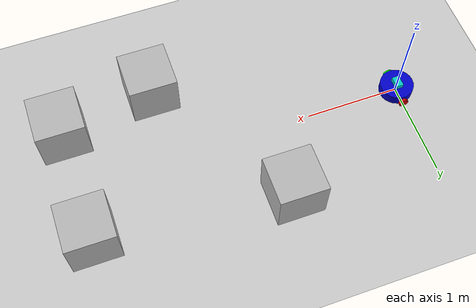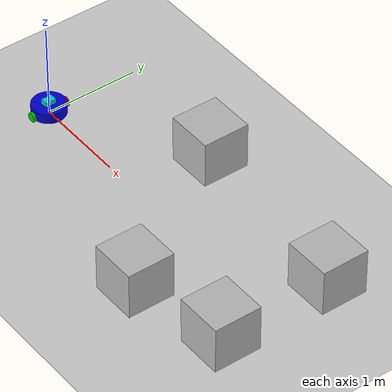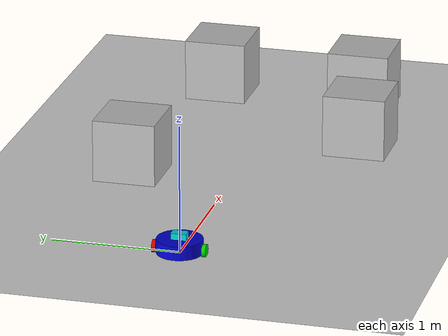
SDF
<?xml version="1.0" ?>
<sdf version="1.8">
	<world name="car_world">
		<physics name="1ms" type="gz-physics">
			<max_step_size>0.001</max_step_size>
			<real_time_factor>1.0</real_time_factor>
		</physics>
		<plugin filename="libgz-sim-sensors-system.so"
				name="gz::sim::systems::Sensors">
			<render_engine>ogre2</render_engine>
		</plugin>

		<!-- Add Plugins -->
		<plugin
		filename="gz-sim-physics-system"
		name="gz::sim::systems::Physics">
		</plugin>

		<plugin
		filename="gz-sim-scene-broadcaster-system"
		name="gz::sim::systems::SceneBroadcaster">
		</plugin>

		<light type="directional" name="sun">
			<cast_shadows>true</cast_shadows>
			<pose>0 0 10 0 0 0</pose>
			<diffuse>0.8 0.8 0.8 1</diffuse>
			<specular>0.2 0.2 0.2 1</specular>
			<attenuation>
				<range>1000</range>
				<constant>0.9</constant>
				<linear>0.01</linear>
				<quadratic>0.001</quadratic>
			</attenuation>
			<direction>-0.5 0.1 -0.9</direction>
		</light>

		<model name="ground_plane">
			<static>true</static>
			<link name="link">
				<collision name="collision">
					<geometry>
						<plane>
							<normal>0 0 1</normal>
							<size>100 100</size>
						</plane>
					</geometry>
				</collision>
				<visual name="visual">
					<geometry>
						<plane>
							<normal>0 0 1</normal>
							<size>100 100</size>
						</plane>
					</geometry>
					<material>
						<ambient>0.8 0.8 0.8 1</ambient>
						<diffuse>0.8 0.8 0.8 1</diffuse>
						<specular>0.8 0.8 0.8 1</specular>
					</material>
				</visual>
			</link>
		</model>

		<!-- Obstacle 1 -->
		<model name="box_1">
			<static>true</static>
			<pose>1.5 0.8 0.25 0 0 0</pose>
			<link name="link">
				<collision name="collision">
					<geometry>
						<box>
							<size>0.5 0.5 0.5</size>
						</box>
					</geometry>
				</collision>
				<visual name="visual">
					<geometry>
						<box>
							<size>0.5 0.5 0.5</size>
						</box>
					</geometry>
				</visual>
			</link>
		</model>

		<!-- Obstacle 2 -->
		<model name="box_2">
			<static>true</static>
			<pose>2.5 -0.8 0.25 0 0 0</pose>
			<link name="link">
				<collision name="collision">
					<geometry>
						<box>
							<size>0.5 0.5 0.5</size>
						</box>
					</geometry>
				</collision>
				<visual name="visual">
					<geometry>
						<box>
							<size>0.5 0.5 0.5</size>
						</box>
					</geometry>
				</visual>
			</link>
		</model>

		<!-- Obstacle 3 -->
		<model name="box_3">
			<static>true</static>
			<pose>3.5 0.6 0.25 0 0 0</pose>
			<link name="link">
				<collision name="collision">
					<geometry>
					<box>
						<size>0.5 0.5 0.5</size>
					</box>
					</geometry>
				</collision>
				<visual name="visual">
					<geometry>
						<box>
							<size>0.5 0.5 0.5</size>
						</box>
					</geometry>
				</visual>
			</link>
		</model>

		<!-- Obstacle 4 -->
		<model name="box_4">
			<static>true</static>
			<pose>3.5 -0.6 0.25 0 0 0</pose>
			<link name="link">
				<collision name="collision">
					<geometry>
					<box>
						<size>0.5 0.5 0.5</size>
					</box>
					</geometry>
				</collision>
				<visual name="visual">
					<geometry>
						<box>
							<size>0.5 0.5 0.5</size>
						</box>
					</geometry>
				</visual>
			</link>
		</model>

		<!-- Use include tag to include the qbot model from the description package -->
		<include>
			<uri>/home/birajith/Documents/Robotics/lab-06-birajithk/CS3340-Workspace/src/qbot_description/sdf/qbot.sdf</uri>
			<name>qbot</name>
			<pose>0 0 0 0 0 0</pose>
		</include>
	</world>
</sdf>

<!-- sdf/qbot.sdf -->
<sdf version="1.8">
    <model name='qbot' canonical_link='base_link'>

        <plugin filename="libign_ros2_control-system.so"
                name="ign_ros2_control::IgnitionROS2ControlPlugin">
            <parameters>/home/birajith/Documents/Robotics/lab-06-birajithk/CS3340-Workspace/src/qbot_description/config/qbot_controllers.yaml</parameters>
        </plugin>

        <pose>0 0 0 0 0 0</pose>

        <ros2_control name="qbot_system" type="system">
            <hardware>
                <plugin>ign_ros2_control/IgnitionSystem</plugin>
            </hardware>

            <joint name="wheel_left_joint">
                <command_interface name="velocity">
                    <param name="min">-10</param>
                    <param name="max">10</param>
                </command_interface>
                <state_interface name="position"/>
                <state_interface name="velocity"/>
            </joint>

            <joint name="wheel_right_joint">
                <command_interface name="velocity">
                    <param name="min">-10</param>
                    <param name="max">10</param>
                </command_interface>
                <state_interface name="position"/>
                <state_interface name="velocity"/>
            </joint>
        </ros2_control>

        <!-- Base -->
        <link name='base_link'>
            <pose>0 0 0.05949 0 0 0</pose>
            <inertial>
                <!-- TODO: Add mass-->
                <mass>2.4</mass>
                <inertia>
                    <ixx>0.019995</ixx>
                    <ixy>0</ixy>
                    <ixz>0</ixz>
                    <iyy>0.019995</iyy>
                    <iyz>0</iyz>
                    <izz>0.03675</izz>
                </inertia>
            </inertial>
            <visual name='base_visual'>
                <!-- TODO: Add geometry-->
                <geometry>
                <cylinder>
                    <length>0.10938</length>
                    <radius>0.178</radius>
                </cylinder>
                </geometry>
                <material>
                    <ambient>0.0 0.0 0.8 1</ambient>
                    <diffuse>0.0 0.0 0.8 1</diffuse>
                    <specular>1 1 1 1</specular>
                </material>
            </visual>
            <!-- TODO: Add collision geometry-->
            <collision name='base_collision'>
                <geometry>
                <cylinder>
                    <length>0.10938</length>
                    <radius>0.178</radius>
                </cylinder>
                </geometry>
            </collision>
        </link>

        <!-- Left wheel -->
        <link name='wheel_left_link'>
            <pose relative_to='base_link'>0 0.193 -0.0245 -1.57079632679 0 0</pose>
            <inertial>
                <!-- TODO: Add mass-->
                <mass>0.01</mass>
                <inertia>
                    <ixx>0.001</ixx>
                    <ixy>0</ixy>
                    <ixz>0</ixz>
                    <iyy>0.001</iyy>
                    <iyz>0</iyz>
                    <izz>0.001</izz>
                </inertia>
            </inertial>
            <visual name='wheel_left_visual'>
                <!-- TODO: Add geometry-->
                <geometry>
                <cylinder>
                    <length>0.03</length>
                    <radius>0.05</radius>
                </cylinder>
                </geometry>
                <material>
                    <ambient>0.8 0.0 0.0 1</ambient>
                    <diffuse>0.8 0.0 0.0 1</diffuse>
                    <specular>1 1 1 1</specular>
                </material>
            </visual>
            <!-- TODO: Add collision geometry-->
            <collision name='wheel_left_collision'>
                <geometry>
                <cylinder>
                    <length>0.03</length>
                    <radius>0.05</radius>
                </cylinder>
                </geometry>
            </collision>
        </link>

        <!-- Right wheel -->
        <link name='wheel_right_link'>
            <pose relative_to='base_link'>0 -0.193 -0.0245 -1.57079632679 0 0</pose>
            <inertial>
                <!-- TODO: Add mass-->
                <mass>0.01</mass>
                <inertia>
                    <ixx>0.001</ixx>
                    <ixy>0</ixy>
                    <ixz>0</ixz>
                    <iyy>0.001</iyy>
                    <iyz>0</iyz>
                    <izz>0.001</izz>
                </inertia>
            </inertial>
            <visual name='wheel_right_visual'>
                <!-- TODO: Add geometry-->
               <geometry>
                    <cylinder>
                        <length>0.03</length>
                        <radius>0.05</radius>
                    </cylinder>
                </geometry>
                <material>
                    <ambient>0.0 0.8 0.0 1</ambient>
                    <diffuse>0.0 0.8 0.0 1</diffuse>
                    <specular>1 1 1 1</specular>
                </material>
            </visual>
            <!-- TODO: Add collision geometry-->
            <collision name='wheel_right_collision'>
                <geometry>
                    <cylinder>
                        <length>0.03</length>
                        <radius>0.05</radius>
                    </cylinder>
                </geometry>
            </collision>
        </link>

        <!-- Front caster -->
        <link name='caster_front_link'>
            <pose relative_to='base_link'>0.115 0 -0.0485 -1.57079632679 0 0</pose>
            <inertial>
                <!-- TODO: Add mass-->
                <mass>0.01</mass>
                <inertia>
                    <ixx>0.001</ixx>
                    <ixy>0</ixy>
                    <ixz>0</ixz>
                    <iyy>0.001</iyy>
                    <iyz>0</iyz>
                    <izz>0.001</izz>
                </inertia>
            </inertial>
            <visual name='caster_front_visual'>
                <!-- TODO: Add geometry-->
                <geometry>
                    <cylinder>
                        <length>0.03</length>
                        <radius>0.025</radius>
                    </cylinder>
                </geometry>
                <material>
                    <ambient>0.8 0.8 0.0 1</ambient>
                    <diffuse>0.8 0.8 0.0 1</diffuse>
                    <specular>1 1 1 1</specular>
                </material>
            </visual>
            <!-- TODO: Add collision geometry-->
            <collision name='caster_front_collision'>
                <geometry>
                    <cylinder>
                        <length>0.03</length>
                        <radius>0.025</radius>
                    </cylinder>
                </geometry>
            </collision>
        </link>

        <!-- Back caster -->
        <link name='caster_back_link'>
            <pose relative_to='base_link'>-0.135 0 -0.0485 -1.57079632679 0 0</pose>
            <inertial>
                <!-- TODO: Add mass-->
                <mass>0.01</mass>
                <inertia>
                    <ixx>0.001</ixx>
                    <ixy>0</ixy>
                    <ixz>0</ixz>
                    <iyy>0.001</iyy>
                    <iyz>0</iyz>
                    <izz>0.001</izz>
                </inertia>
            </inertial>
            <visual name='caster_back_visual'>
                <!-- TODO: Add geometry-->
                <geometry>
                    <cylinder>
                        <length>0.03</length>
                        <radius>0.025</radius>
                    </cylinder>
                </geometry>
                <material>
                    <ambient>0.8 0.0 0.8 1</ambient>
                    <diffuse>0.8 0.0 0.8 1</diffuse>
                    <specular>1 1 1 1</specular>
                </material>
            </visual>
            <!-- TODO: Add collision geometry-->
            <collision name='caster_back_collision'>
                <geometry>
                    <cylinder>
                        <length>0.03</length>
                        <radius>0.025</radius>
                    </cylinder>
                </geometry>
            </collision>
        </link>

        <!-- Sensor mount -->
        <link name='sensor_mount_link'>
            <pose relative_to='base_link'>0 0 0.07969 0 0 0</pose>
            <inertial>
                <!-- TODO: Add mass-->
                <mass>0.001</mass>
                <inertia>
                    <ixx>0.0001</ixx>
                    <ixy>0</ixy>
                    <ixz>0</ixz>
                    <iyy>0.000001</iyy>
                    <iyz>0</iyz>
                    <izz>0.0001</izz>
                </inertia>
            </inertial>
            <visual name='sensor_mount_visual'>
                <!-- TODO: Add geometry-->
                <geometry>
                    <box>
                        <size>0.08 0.12 0.05</size>
                    </box>
                </geometry>
                <material>
                    <ambient>0.0 0.8 0.8 1</ambient>
                    <diffuse>0.0 0.8 0.8 1</diffuse>
                    <specular>1 1 1 1</specular>
                </material>
            </visual>
            <!-- TODO: Add collision geometry-->
            <collision name='sensor_mount_collision'>
                <geometry>
                    <box>
                        <size>0.08 0.12 0.05</size>
                    </box>
                </geometry>
            </collision>

            <sensor name="lidar" type="gpu_lidar">
                <topic>lidar</topic>
                <update_rate>10</update_rate>
                <always_on>1</always_on>
                <visualize>true</visualize>
                <gz_frame_id>sensor_mount_link</gz_frame_id>

                <lidar>
                    <scan>
                        <horizontal>
                            <samples>360</samples>
                            <resolution>1</resolution>
                            <min_angle>-3.14159</min_angle>
                            <max_angle>3.14159</max_angle>
                        </horizontal>
                    </scan>
                    <range>
                        <min>0.12</min>
                        <max>10.0</max>
                        <resolution>0.01</resolution>
                    </range>
                    <noise>
                        <type>gaussian</type>
                        <mean>0.0</mean>
                        <stddev>0.01</stddev>
                    </noise>
                </lidar>
            </sensor>
        </link>

        <!-- Wheel Joints -->
        <joint name='wheel_left_joint' type='revolute'>
            <parent>base_link</parent>
            <child>wheel_left_link</child>
            <axis>
                <xyz>0 0 1</xyz>
                <limit>
                    <lower>-1.79769e+308</lower>
                    <upper>1.79769e+308</upper>
                </limit>
            </axis>
        </joint>

        <joint name='wheel_right_joint' type='revolute'>
            <parent>base_link</parent>
            <child>wheel_right_link</child>
            <axis>
                <xyz>0 0 1</xyz>
                <limit>
                    <lower>-1.79769e+308</lower>
                    <upper>1.79769e+308</upper>
                </limit>
            </axis>
        </joint>
        <!-- Castor Joints -->
        <joint name='caster_front_joint' type='fixed'>
            <parent>base_link</parent>
            <child>caster_front_link</child>
            <axis>
                <xyz>0 0 1</xyz>
                <limit>
                    <lower>-1.79769e+308</lower>
                    <upper>1.79769e+308</upper>
                </limit>
            </axis>
        </joint>

        <joint name='caster_back_joint' type='fixed'>
            <parent>base_link</parent>
            <child>caster_back_link</child>
            <axis>
                <xyz>0 0 1</xyz>
                <limit>
                    <lower>-1.79769e+308</lower>
                    <upper>1.79769e+308</upper>
                </limit>
            </axis>
        </joint>
        <!-- Other Joints -->
        <joint name='sensor_mount_joint' type='fixed'>
            <parent>base_link</parent>
            <child>sensor_mount_link</child>
        </joint>
    </model>
</sdf>
